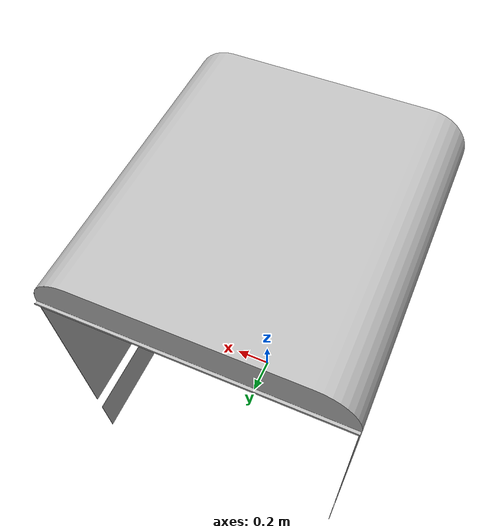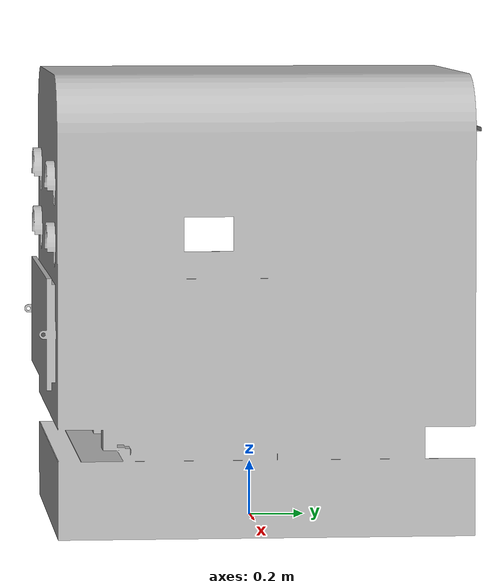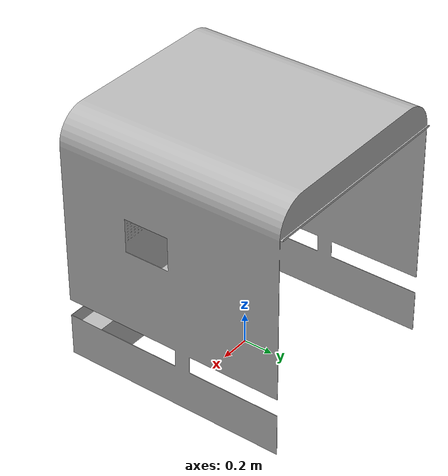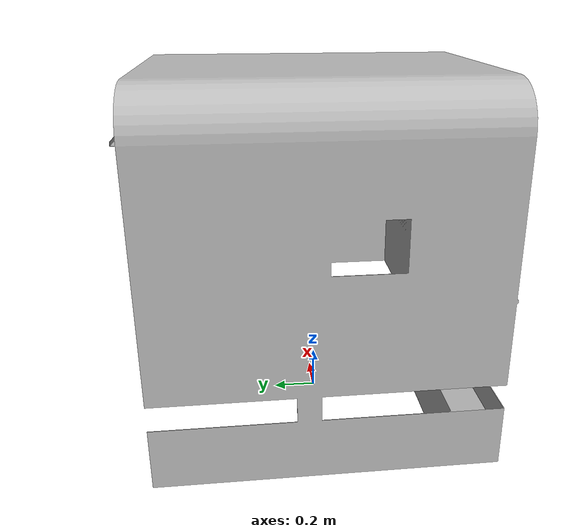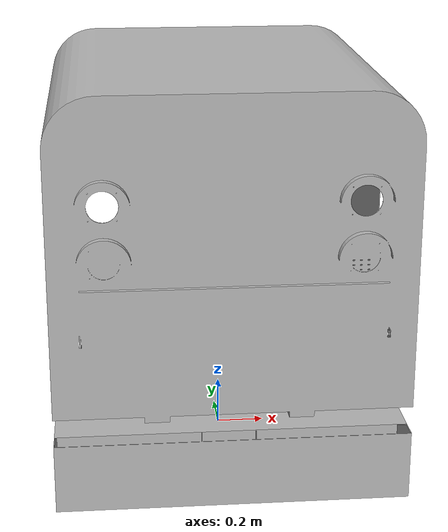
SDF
<?xml version="1.0"?>
<sdf version="1.5">
  <model name="Charging_Station_AT200">
    <link name="link">
      <pose>0 0 0 0 0 3.14159</pose>
      <inertial>
        <pose>0 0 0.2 0 0 0</pose>
        <mass>20.0</mass>
	  <inertia>
	    <ixx>0.9536133</ixx>
	    <ixy>0.0</ixy>
	    <ixz>0.0</ixz>
	    <iyy>0.5711376</iyy>
	    <iyz>0.0</iyz>
	    <izz>0.8255376</izz>
	  </inertia>
      </inertial>
      <collision name="collision">
        <pose>0 0 0 0 0 0</pose>
        <geometry>
          <mesh>
            <uri>model://Charging_Station_AT200/meshes/dock_reflectivetape.STL</uri>
 <!--Dock_updated.STL -->
          </mesh>
        </geometry>
      </collision>
      <visual name="visual">
        <pose>0 0 0 0 0 0</pose>
        <geometry>
          <mesh>
            <uri>model://Charging_Station_AT200/meshes/dock_reflectivetape.STL</uri>
 <!--Dock_updated.STL -->
          </mesh>
        </geometry>
      </visual>
    </link>
  </model>
</sdf>
